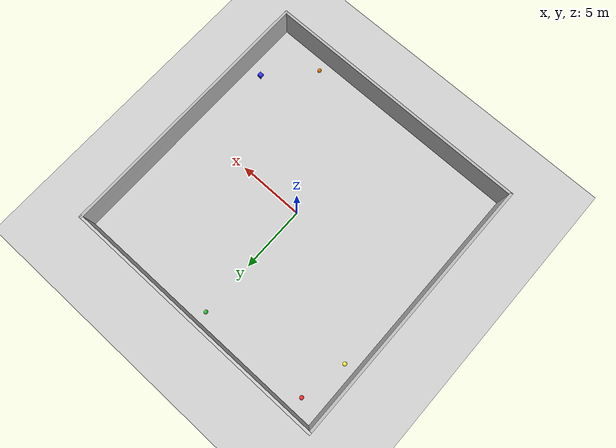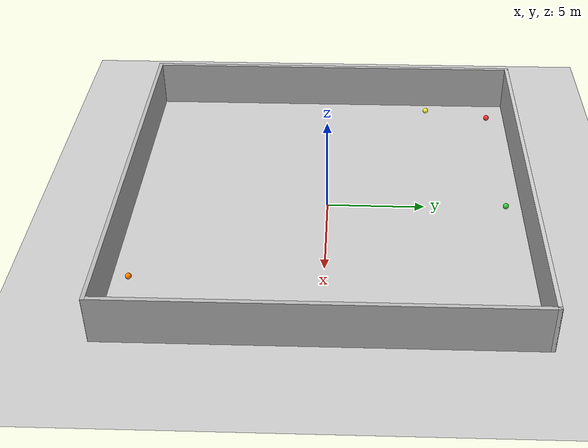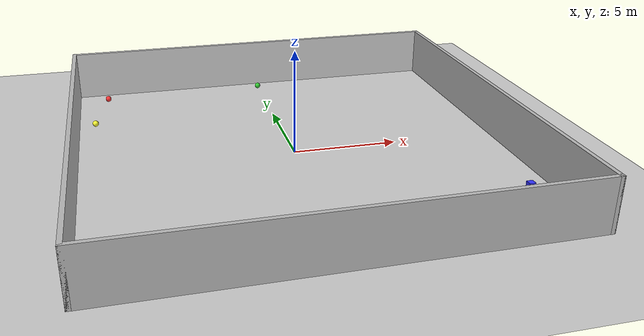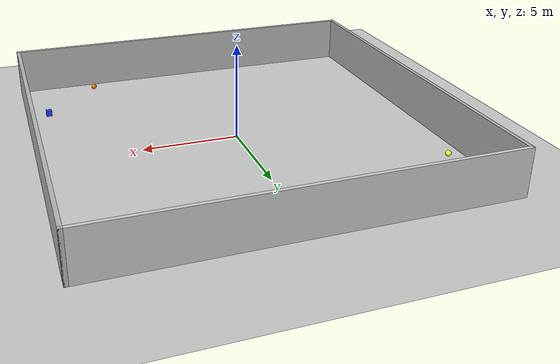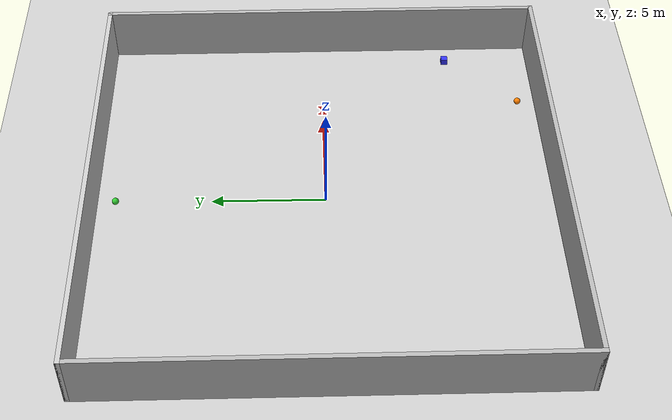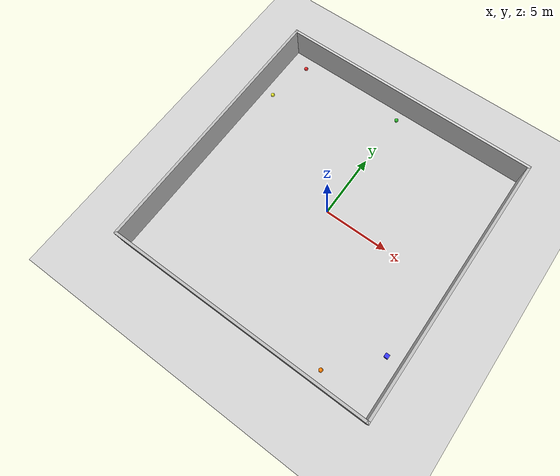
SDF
<?xml version="1.0" ?>
<sdf version="1.6">
  <world name="room_20x20">
    <physics type="ode">
      <max_step_size>0.01</max_step_size>
    </physics>

    <!-- Ground plane - inline definition -->
    <model name="ground_plane">
      <static>true</static>
      <link name="link">
        <collision name="collision">
          <geometry>
            <plane>
              <normal>0 0 1</normal>
              <size>100 100</size>
            </plane>
          </geometry>
        </collision>
        <visual name="visual">
          <geometry>
            <plane>
              <normal>0 0 1</normal>
              <size>100 100</size>
            </plane>
          </geometry>
          <material>
            <ambient>0.8 0.8 0.8 1</ambient>
            <diffuse>0.8 0.8 0.8 1</diffuse>
          </material>
        </visual>
      </link>
    </model>

    <!-- Four enclosing walls forming a 20m x 20m square centered at (0,0) -->
    <!-- Wall thickness 0.2m, height 2.5m -->

    <!-- North wall (+Y) -->
    <model name="wall_north">
      <static>true</static>
      <link name="link">
        <pose>0 10.1 1.25 0 0 0</pose>
        <collision name="collision">
          <geometry>
            <box>
              <size>20.4 0.2 2.5</size>
            </box>
          </geometry>
        </collision>
        <visual name="visual">
          <geometry>
            <box>
              <size>20.4 0.2 2.5</size>
            </box>
          </geometry>
          <material>
            <ambient>0.7 0.7 0.7 1</ambient>
            <diffuse>0.8 0.8 0.8 1</diffuse>
          </material>
        </visual>
      </link>
    </model>

    <!-- South wall (-Y) -->
    <model name="wall_south">
      <static>true</static>
      <link name="link">
        <pose>0 -10.1 1.25 0 0 0</pose>
        <collision name="collision">
          <geometry>
            <box>
              <size>20.4 0.2 2.5</size>
            </box>
          </geometry>
        </collision>
        <visual name="visual">
          <geometry>
            <box>
              <size>20.4 0.2 2.5</size>
            </box>
          </geometry>
        </visual>
      </link>
    </model>

    <!-- East wall (+X) -->
    <model name="wall_east">
      <static>true</static>
      <link name="link">
        <pose>10.1 0 1.25 0 0 0</pose>
        <collision name="collision">
          <geometry>
            <box>
              <size>0.2 20.4 2.5</size>
            </box>
          </geometry>
        </collision>
        <visual name="visual">
          <geometry>
            <box>
              <size>0.2 20.4 2.5</size>
            </box>
          </geometry>
        </visual>
      </link>
    </model>

    <!-- West wall (-X) -->
    <model name="wall_west">
      <static>true</static>
      <link name="link">
        <pose>-10.1 0 1.25 0 0 0</pose>
        <collision name="collision">
          <geometry>
            <box>
              <size>0.2 20.4 2.5</size>
            </box>
          </geometry>
        </collision>
        <visual name="visual">
          <geometry>
            <box>
              <size>0.2 20.4 2.5</size>
            </box>
          </geometry>
        </visual>
      </link>
    </model>

    <!-- Small obstacle objects near walls -->
    <model name="ball_north_1">
      <static>true</static>
      <pose>-8.5 9.0 0.15 0 0 0</pose>
      <link name="link">
        <collision name="collision">
          <geometry><sphere><radius>0.15</radius></sphere></geometry>
        </collision>
        <visual name="visual">
          <geometry><sphere><radius>0.15</radius></sphere></geometry>
          <material><ambient>1 0.2 0.2 1</ambient><diffuse>1 0.2 0.2 1</diffuse></material>
        </visual>
      </link>
    </model>

    <model name="ball_north_2">
      <static>true</static>
      <pose>0.0 9.2 0.15 0 0 0</pose>
      <link name="link">
        <collision name="collision">
          <geometry><sphere><radius>0.15</radius></sphere></geometry>
        </collision>
        <visual name="visual">
          <geometry><sphere><radius>0.15</radius></sphere></geometry>
          <material><ambient>0.2 0.8 0.2 1</ambient><diffuse>0.2 0.8 0.2 1</diffuse></material>
        </visual>
      </link>
    </model>

    <model name="box_east_1">
      <static>true</static>
      <pose>9.0 -6.0 0.15 0 0 0</pose>
      <link name="link">
        <collision name="collision">
          <geometry><box><size>0.3 0.3 0.3</size></box></geometry>
        </collision>
        <visual name="visual">
          <geometry><box><size>0.3 0.3 0.3</size></box></geometry>
          <material><ambient>0.2 0.2 1 1</ambient><diffuse>0.2 0.2 1 1</diffuse></material>
        </visual>
      </link>
    </model>

    <model name="ball_west_1">
      <static>true</static>
      <pose>-9.2 5.5 0.15 0 0 0</pose>
      <link name="link">
        <collision name="collision">
          <geometry><sphere><radius>0.15</radius></sphere></geometry>
        </collision>
        <visual name="visual">
          <geometry><sphere><radius>0.15</radius></sphere></geometry>
          <material><ambient>1 1 0.2 1</ambient><diffuse>1 1 0.2 1</diffuse></material>
        </visual>
      </link>
    </model>

    <model name="ball_south_1">
      <static>true</static>
      <pose>6.0 -9.2 0.15 0 0 0</pose>
      <link name="link">
        <collision name="collision">
          <geometry><sphere><radius>0.15</radius></sphere></geometry>
        </collision>
        <visual name="visual">
          <geometry><sphere><radius>0.15</radius></sphere></geometry>
          <material><ambient>1 0.5 0 1</ambient><diffuse>1 0.5 0 1</diffuse></material>
        </visual>
      </link>
    </model>

    <!-- Sun / lighting - inline definition -->
    <light type="directional" name="sun">
      <cast_shadows>true</cast_shadows>
      <pose>0 0 10 0 0 0</pose>
      <diffuse>0.8 0.8 0.8 1</diffuse>
      <specular>0.2 0.2 0.2 1</specular>
      <attenuation>
        <range>1000</range>
        <constant>0.9</constant>
        <linear>0.01</linear>
        <quadratic>0.001</quadratic>
      </attenuation>
      <direction>-0.5 0.1 -0.9</direction>
    </light>

  </world>
</sdf>
